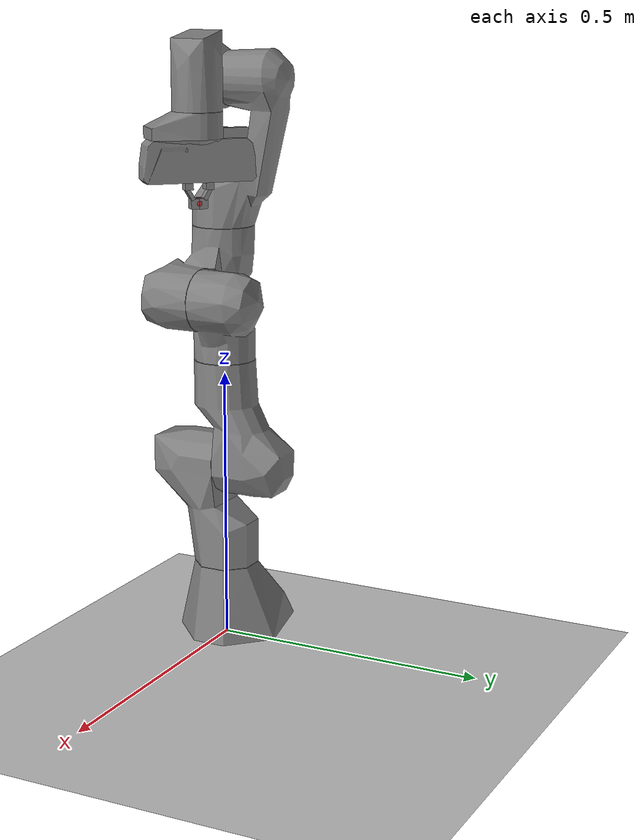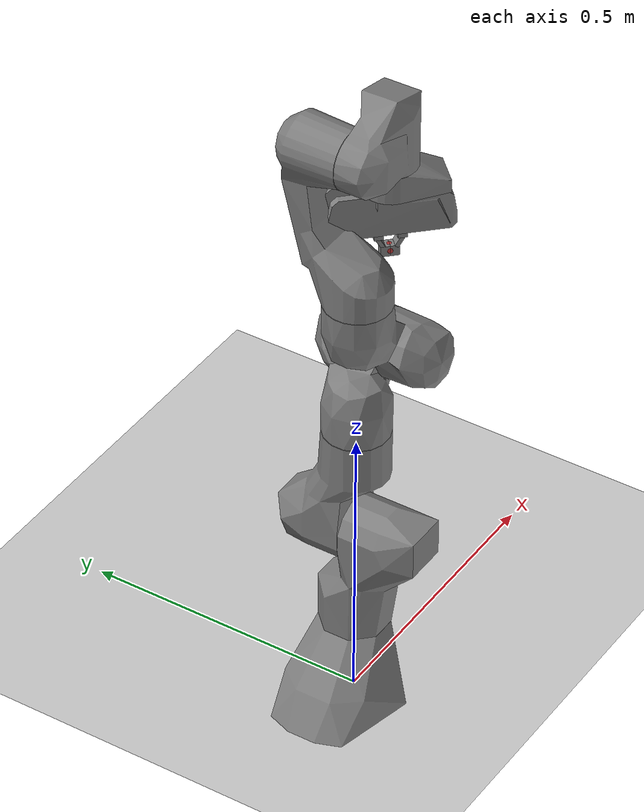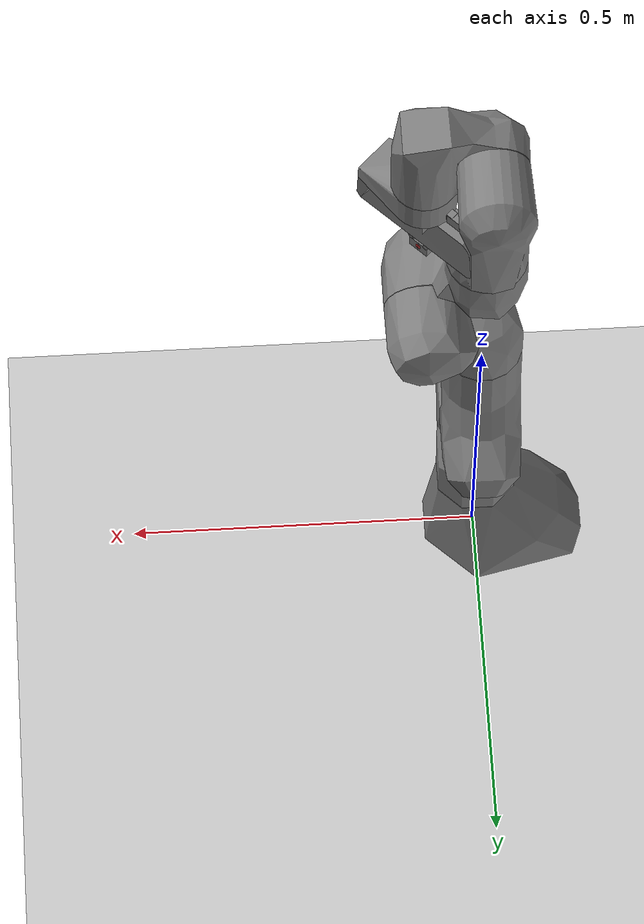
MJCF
<mujoco model="panda_scene">
  <compiler angle="radian"
    meshdir="../code/.venv/lib/python3.12/site-packages/cmeel.prefix/share/example-robot-data/robots/panda_description/meshes/collision"
    balanceinertia="true" />

  <option timestep="0.02" integrator="RK4" />

  <asset>
    <mesh name="link0" file="link0.stl" />
    <mesh name="link1" file="link1.stl" />
    <mesh name="link2" file="link2.stl" />
    <mesh name="link3" file="link3.stl" />
    <mesh name="link4" file="link4.stl" />
    <mesh name="link5" file="link5.stl" />
    <mesh name="link6" file="link6.stl" />
    <mesh name="link7" file="link7.stl" />
    <mesh name="hand" file="hand.stl" />
  </asset>

  <worldbody>
    <light pos="0 0 2" dir="0 0 -1" diffuse="0.8 0.8 0.8" />
    <geom name="floor" type="plane" size="2 2 0.1" pos="0 0 0" rgba="0.8 0.8 0.8 1" />

    <!-- Panda base (fixed to world) -->
    <body name="panda_link0" pos="0 0 0">
      <geom type="mesh" mesh="link0" />

      <body name="panda_link1" pos="0 0 0.333">
        <inertial pos="0.003875 0.002081 -0.04762" quat="0.711549 0.00634377 -0.0131124 0.702485"
          mass="4.97068" diaginertia="0.707137 0.703435 0.00852456" />
        <joint name="panda_joint1" pos="0 0 0" axis="0 0 1" range="-2.8973 2.8973" />
        <geom type="mesh" mesh="link1" />

        <body name="panda_link2" quat="0.707107 -0.707107 0 0">
          <inertial pos="-0.003141 -0.02872 0.003495" quat="-0.168175 0.828366 -0.122878 0.520027"
            mass="0.646926" diaginertia="0.0310326 0.0283001 0.00273425" />
          <joint name="panda_joint2" pos="0 0 0" axis="0 0 1" range="-1.7628 1.7628" />
          <geom type="mesh" mesh="link2" />

          <body name="panda_link3" pos="0 -0.316 0" quat="0.707107 0.707107 0 0">
            <inertial pos="0.027518 0.039252 -0.066502"
              quat="0.662769 -0.00678331 0.252053 0.705096" mass="3.2286"
              diaginertia="0.0415014 0.0414793 0.00124635" />
            <joint name="panda_joint3" pos="0 0 0" axis="0 0 1" range="-2.8973 2.8973" />
            <geom type="mesh" mesh="link3" />

            <body name="panda_link4" pos="0.0825 0 0" quat="0.707107 0.707107 0 0">
              <inertial pos="-0.05317 0.104419 0.027454" quat="0.65058 0.529822 -0.0962034 0.535518"
                mass="3.5879" diaginertia="0.0349596 0.0281483 0.0106201" />
              <joint name="panda_joint4" pos="0 0 0" axis="0 0 1" range="-3.0718 -0.0698" />
              <geom type="mesh" mesh="link4" />

              <body name="panda_link5" pos="-0.0825 0.384 0" quat="0.707107 -0.707107 0 0">
                <inertial pos="-0.011953 0.041065 -0.038437"
                  quat="0.987313 -0.0121954 0.0719187 -0.141037" mass="1.22595"
                  diaginertia="0.0367625 0.0288531 0.00803437" />
                <joint name="panda_joint5" pos="0 0 0" axis="0 0 1" range="-2.8973 2.8973" />
                <geom type="mesh" mesh="link5" />

                <body name="panda_link6" quat="0.707107 0.707107 0 0">
                  <inertial pos="0.060149 -0.014117 -0.010517"
                    quat="0.101075 0.59332 0.0287227 0.798079" mass="1.66656"
                    diaginertia="0.00584276 0.00431037 0.00159787" />
                  <joint name="panda_joint6" pos="0 0 0" axis="0 0 1" range="-0.0175 3.7525" />
                  <geom type="mesh" mesh="link6" />

                  <body name="panda_link7" pos="0.088 0 0" quat="0.707107 0.707107 0 0">
                    <inertial pos="0.0535956 -0.00213401 0.045858"
                      quat="0.594329 -0.0303333 0.0970674 0.797766" mass="1.46552"
                      diaginertia="0.0155969 0.0137507 0.00943568" />
                    <joint name="panda_joint7" pos="0 0 0" axis="0 0 1" range="-2.8973 2.8973" />
                    <geom type="mesh" mesh="link7" />
                    <geom pos="0 0 0.107" quat="0.92388 0 0 -0.382683" type="mesh" mesh="hand" />
                    <body name="panda_leftfinger" pos="0 0 0.1654" quat="0.92388 0 0 -0.382683">
                      <inertial pos="0 0 0" mass="0.015" diaginertia="2.375e-06 2.375e-06 7.5e-07" />
                      <joint name="panda_finger_joint1" pos="0 0 0" axis="0 1 0" type="slide"
                        range="0 0.04" actuatorfrcrange="-100 100" damping="0.3" />
                      <geom size="0.011 0.0075 0.01" pos="0 0.0185 0.011" type="box" />
                      <geom size="0.011 0.0044 0.0019" pos="0 0.0068 0.0022" type="box" />
                      <geom size="0.00875 0.0035 0.01175" pos="0 0.0159 0.02835"
                        quat="0.965926 0.258819 0 0" type="box" />
                      <geom size="0.00875 0.0076 0.00925" pos="0 0.00758 0.04525" type="box" />
                    </body>
                    <body name="panda_rightfinger" pos="0 0 0.1654" quat="0.92388 0 0 -0.382683">
                      <inertial pos="0 0 0" mass="0.015" diaginertia="2.375e-06 2.375e-06 7.5e-07" />
                      <joint name="panda_finger_joint2" pos="0 0 0" axis="0 -1 0" type="slide"
                        range="0 0.04" actuatorfrcrange="-100 100" damping="0.3" />
                      <geom size="0.011 0.0075 0.01" pos="0 -0.0185 0.011" type="box" />
                      <geom size="0.011 0.0044 0.0019" pos="0 -0.0068 0.0022" type="box" />
                      <geom size="0.00875 0.0035 0.01175" pos="0 -0.0159 0.02835"
                        quat="0.965926 -0.258819 0 0" type="box" />
                      <geom size="0.00875 0.0076 0.00925" pos="0 -0.00758 0.04525" type="box" />
                    </body>
                    <!-- End-effector site (panda_hand_tcp equivalent) -->
                    <site name="ee_site" pos="0 0 0.2105" quat="0.92388 0 0 -0.382683" size="0.01"
                      rgba="1 0 0 0.5" />
                  </body>
                </body>
              </body>
            </body>
          </body>
        </body>
      </body>
    </body>

    <!-- Obstacle spheres (positions set by env at runtime via mj_data.geom_xpos) -->
  </worldbody>

  <keyframe>
    <key name="home" qpos="0 0 0 -1.5708 0 1.5708 0.7854 0 0" />
  </keyframe>

  <!-- Torque actuators for 7 arm joints -->
  <actuator>
    <motor name="act_j1" joint="panda_joint1" gear="1" ctrllimited="true" ctrlrange="-87 87" />
    <motor name="act_j2" joint="panda_joint2" gear="1" ctrllimited="true" ctrlrange="-87 87" />
    <motor name="act_j3" joint="panda_joint3" gear="1" ctrllimited="true" ctrlrange="-87 87" />
    <motor name="act_j4" joint="panda_joint4" gear="1" ctrllimited="true" ctrlrange="-87 87" />
    <motor name="act_j5" joint="panda_joint5" gear="1" ctrllimited="true" ctrlrange="-12 12" />
    <motor name="act_j6" joint="panda_joint6" gear="1" ctrllimited="true" ctrlrange="-12 12" />
    <motor name="act_j7" joint="panda_joint7" gear="1" ctrllimited="true" ctrlrange="-12 12" />
  </actuator>
</mujoco>
